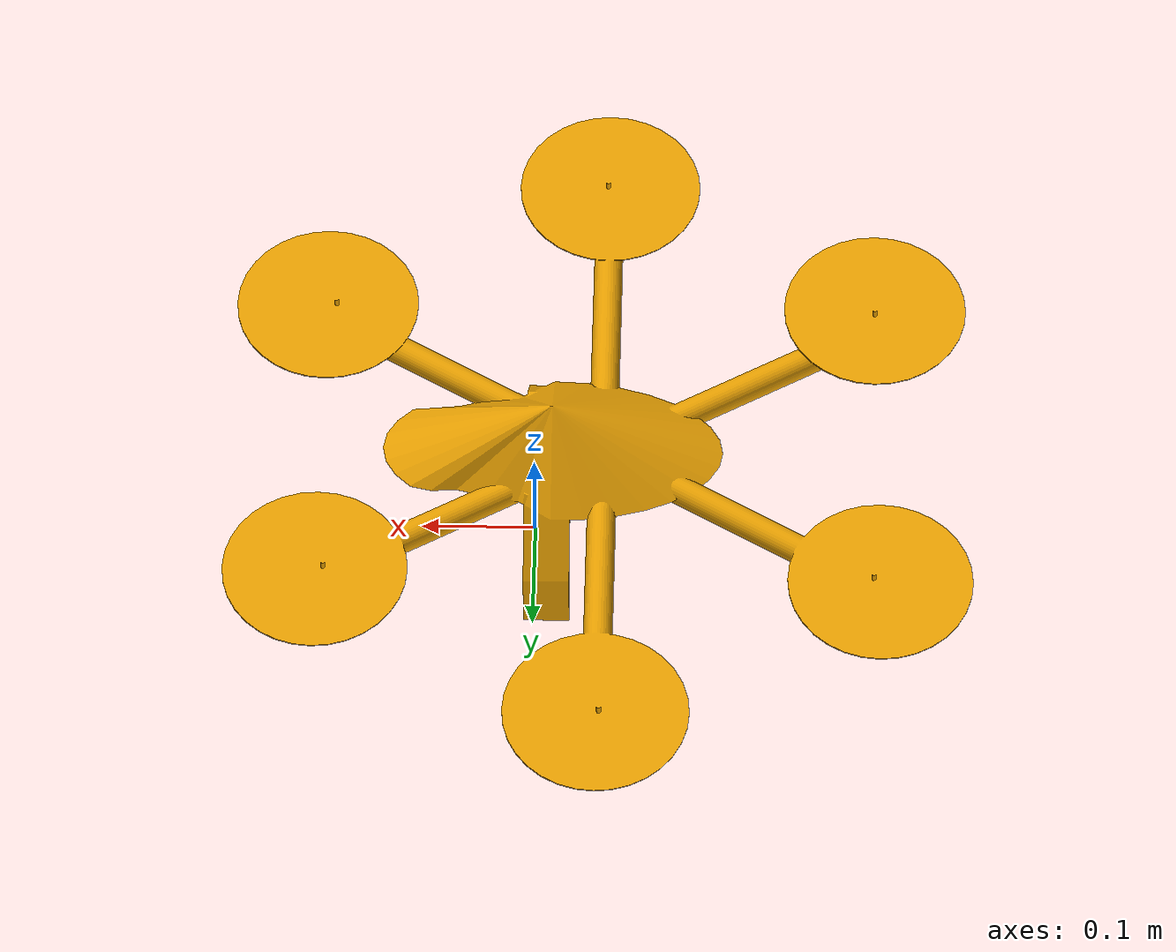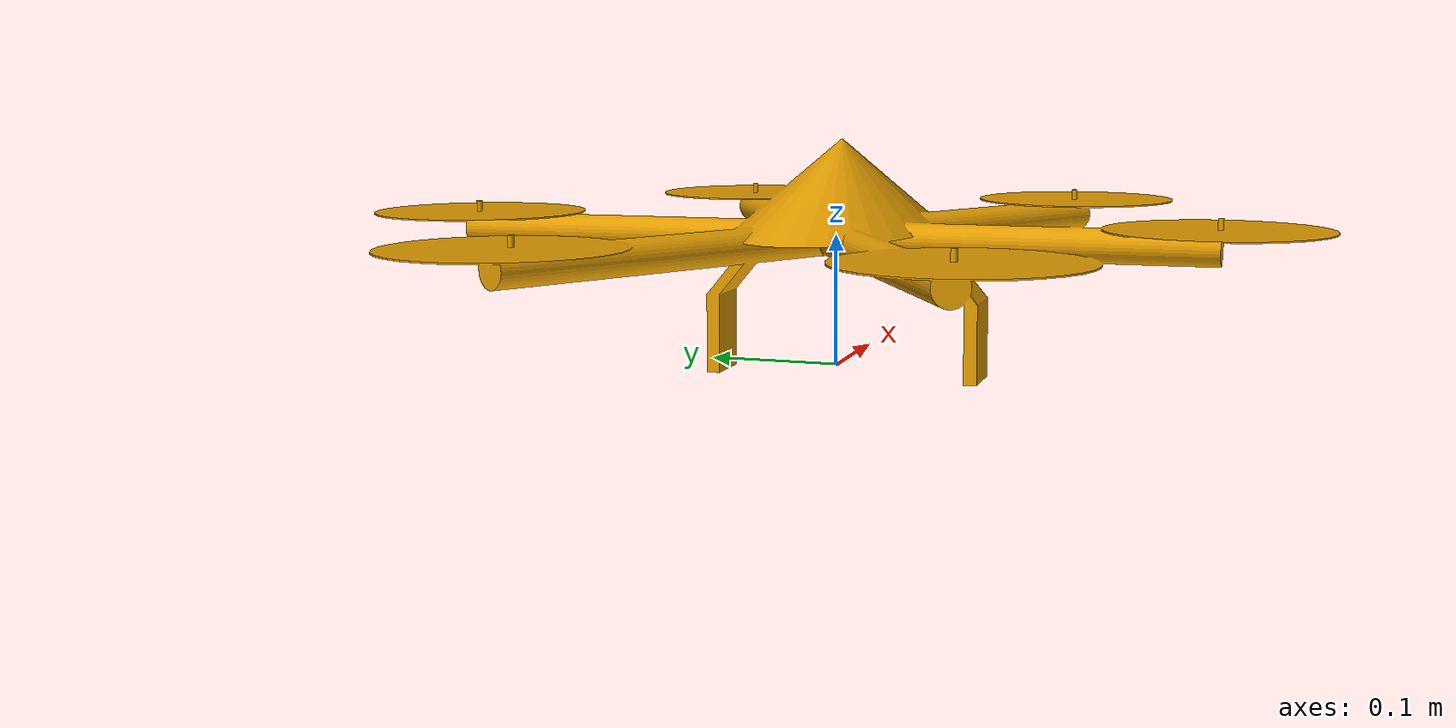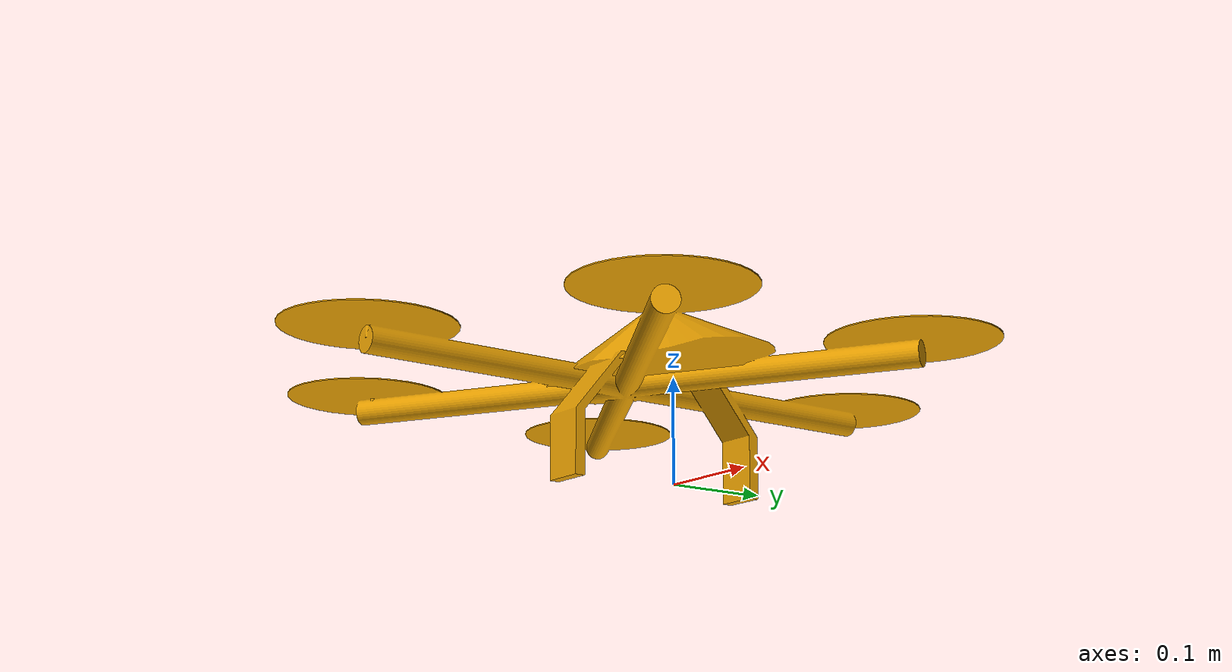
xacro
<?xml version="1.0"?>
<robot
  name="quadrotor"
  xmlns:xacro="http://www.ros.org/wiki/xacro">

    <link name="base_link">
      <inertial>
        <mass value="1.477" />
        <origin xyz="0 0 0" />
        <inertia ixx="0.01152" ixy="0.0" ixz="0.0" iyy="0.01152" iyz="0.0" izz="0.0218" />
      </inertial>

      <visual>
        <origin xyz="0 0 0" rpy="0 0 0" />
        <geometry>
		<mesh filename="file:///home/ubuntu/AdvanDiptera/src/AdvanDiptera_discription/meshes/hexa/advandiptera.dae"/>
        </geometry>
      </visual>

      <collision>
        <origin xyz="0 0 0" rpy="0 0 0" />
        <geometry>
          <mesh filename="file:///home/ubuntu/AdvanDiptera/src/AdvanDiptera_discription/meshes/hexa/advandiptera.stl"/>
        </geometry>
      </collision>
    </link>

    <!-- Sonar height sensor -->

</robot>
